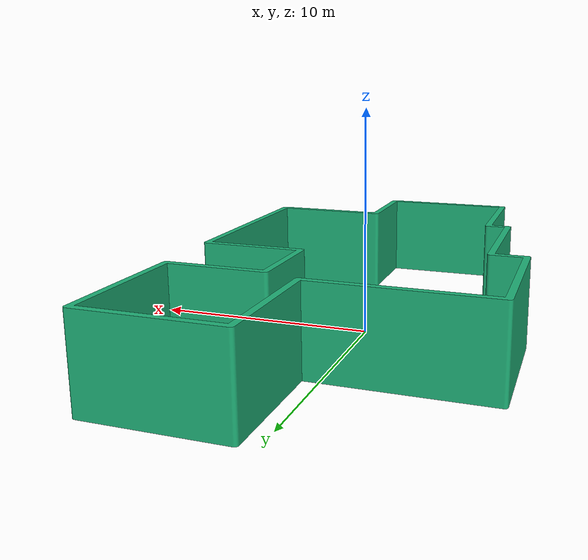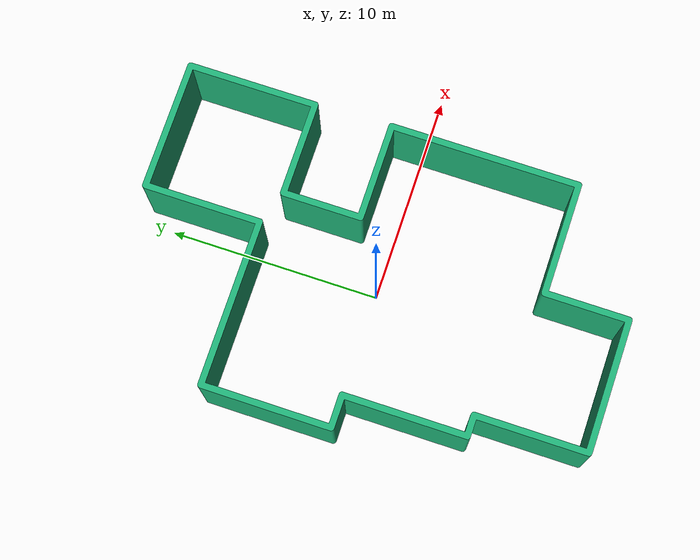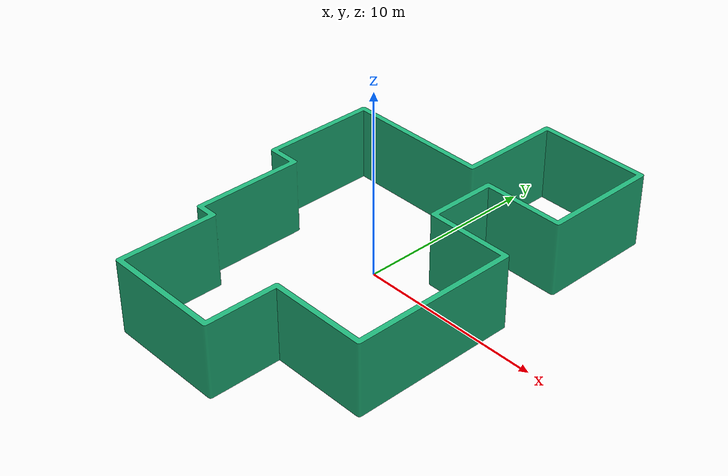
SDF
<?xml version="1.0" ?>
<sdf version="1.6">
  <model name="walls_7">
    <pose frame="">0 0 2 0 -0 0</pose>
    <static>1</static>
    <self_collide>0</self_collide>
    <allow_auto_disable>0</allow_auto_disable>
    <link name="mesh">
      <kinematic>0</kinematic>
      <gravity>1</gravity>
      <self_collide>0</self_collide>
      <collision name="collision">
        <geometry>
          <mesh>
            <uri>model://walls_7/meshes/vTHHMKqZLI.stl</uri>
            <scale>1 1 1</scale>
          </mesh>
        </geometry>
        <pose frame="">-5.75729 1.6713 -2 0 -0 0</pose>
        <max_contacts>20</max_contacts>
      </collision>
      <visual name="visual">
        <geometry>
          <mesh>
            <uri>model://walls_7/meshes/uKSGVSgfqI.stl</uri>
            <scale>1 1 1</scale>
          </mesh>
        </geometry>
        <material>
          <ambient>0.121569 0.709804 0.478431 1</ambient>
          <diffuse>0.12156862745098039 0.7098039215686275 0.47843137254901963 1</diffuse>
        </material>
        <pose frame="">-5.75729 1.6713 -2 0 -0 0</pose>
        <cast_shadows>1</cast_shadows>
        <transparency>0.0</transparency>
      </visual>
      <pose frame="">0 0 0 0 -0 0</pose>
    </link>
  </model>
</sdf>
